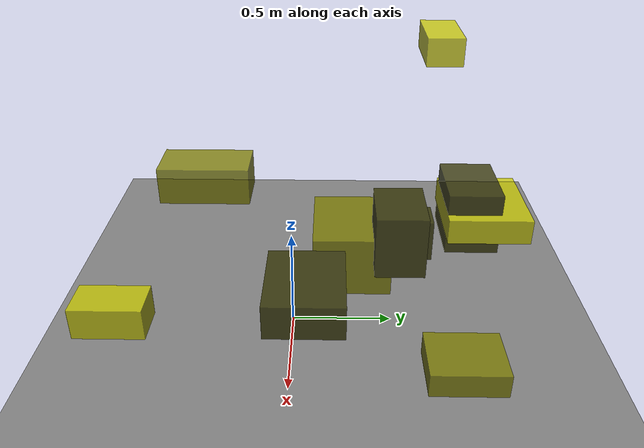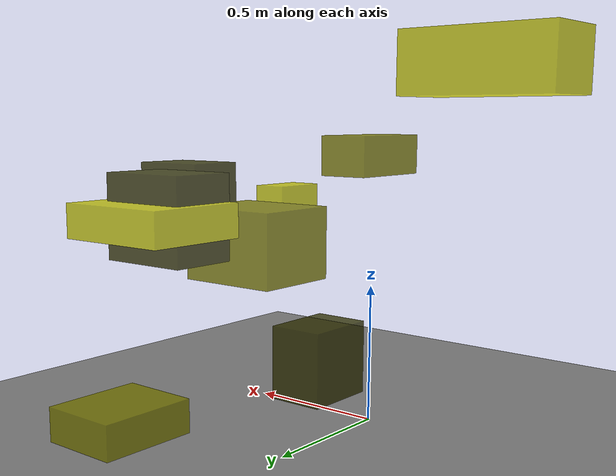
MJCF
<?xml version="1.0"?>
<mujoco model="obstacle_scene">
  <compiler angle="radian" coordinate="local"/>
  <option timestep="0.001" gravity="0 0 -9.81"/>

  <asset>
    <material name="obstacle_mat" rgba="0.8 0.8 0.0 0.8"/>
    <material name="ground_mat" rgba="0.5 0.5 0.5 1"/>
  </asset>

  <worldbody>
    <!-- Ground plane -->
    <geom name="ground" type="plane" size="3 3 0.1" material="ground_mat"/>

    <!-- Obstacles -->
    <body name="obstacle_0" pos="-0.217480 0.597299 0.390172">
      <geom name="obs_0" type="box" size="0.082254 0.113186 0.109590" rgba="0.2 0.2 0.0 0.8"/>
    </body>
    <body name="obstacle_1" pos="0.444133 0.804237 0.109299">
      <geom name="obs_1" type="box" size="0.142561 0.178603 0.060037" rgba="0.5 0.5 0.0 0.8"/>
    </body>
    <body name="obstacle_2" pos="0.224358 0.842973 0.792977">
      <geom name="obs_2" type="box" size="0.191964 0.170645 0.053770" rgba="0.8 0.8 0.0 0.8"/>
    </body>
    <body name="obstacle_3" pos="0.683558 0.094376 0.681224">
      <geom name="obs_3" type="box" size="0.182322 0.154488 0.071881" rgba="0.2 0.2 0.0 0.8"/>
    </body>
    <body name="obstacle_4" pos="0.301312 0.278844 0.659583">
      <geom name="obs_4" type="box" size="0.185557 0.161978 0.129365" rgba="0.5 0.5 0.0 0.8"/>
    </body>
    <body name="obstacle_5" pos="0.867237 -0.589414 0.728375">
      <geom name="obs_5" type="box" size="0.074220 0.130408 0.061462" rgba="0.8 0.8 0.0 0.8"/>
    </body>
    <body name="obstacle_6" pos="0.218941 0.783280 0.799732">
      <geom name="obs_6" type="box" size="0.150889 0.110509 0.134575" rgba="0.2 0.2 0.0 0.8"/>
    </body>
    <body name="obstacle_7" pos="0.239474 -0.333641 0.950975">
      <geom name="obs_7" type="box" size="0.099284 0.186327 0.077156" rgba="0.5 0.5 0.0 0.8"/>
    </body>
    <body name="obstacle_8" pos="-0.833258 0.780837 1.221687">
      <geom name="obs_8" type="box" size="0.190156 0.096571 0.075115" rgba="0.8 0.8 0.0 0.8"/>
    </body>
    <body name="obstacle_9" pos="0.451093 0.464259 0.814539">
      <geom name="obs_9" type="box" size="0.129209 0.099975 0.131346" rgba="0.2 0.2 0.0 0.8"/>
    </body>
  </worldbody>
</mujoco>
